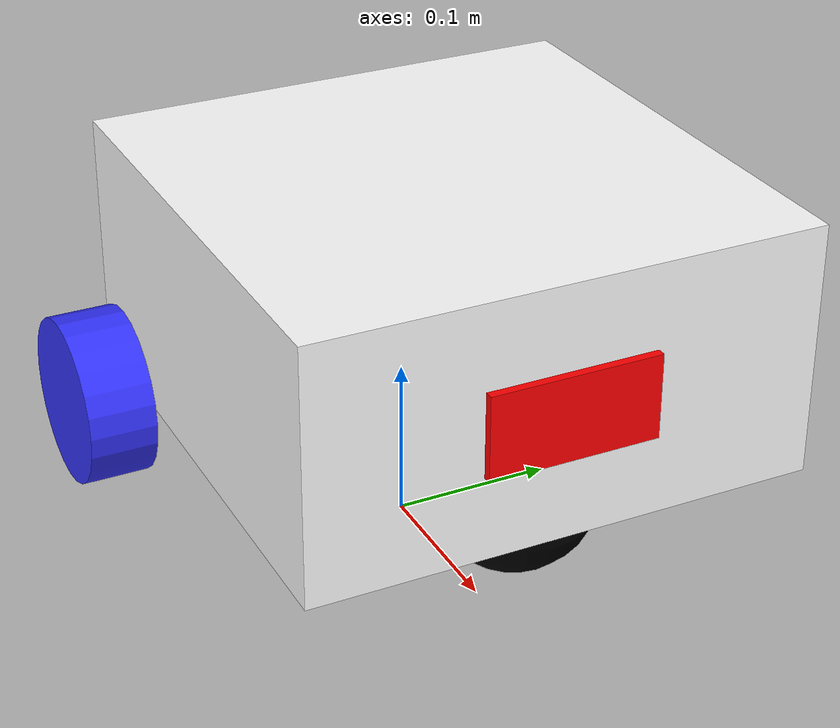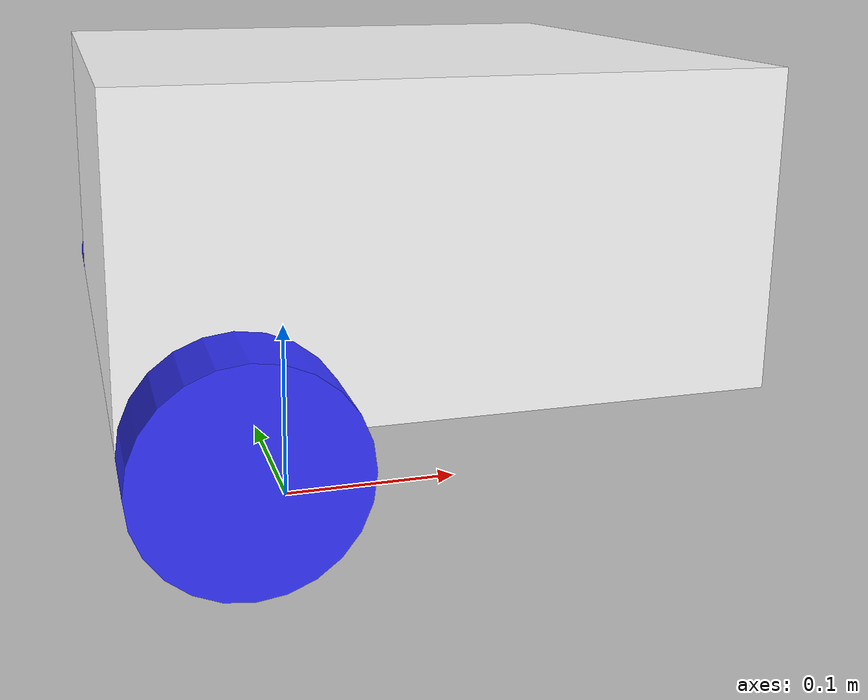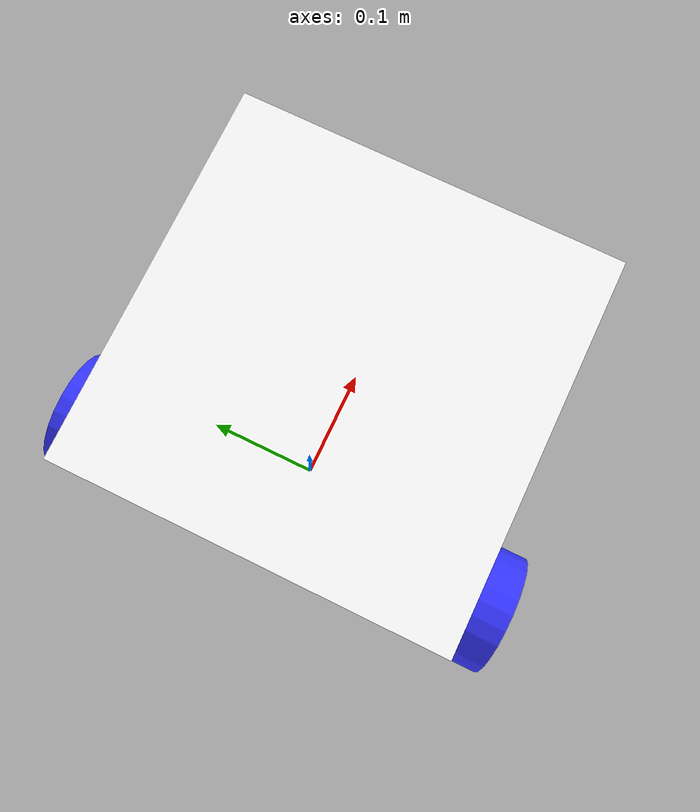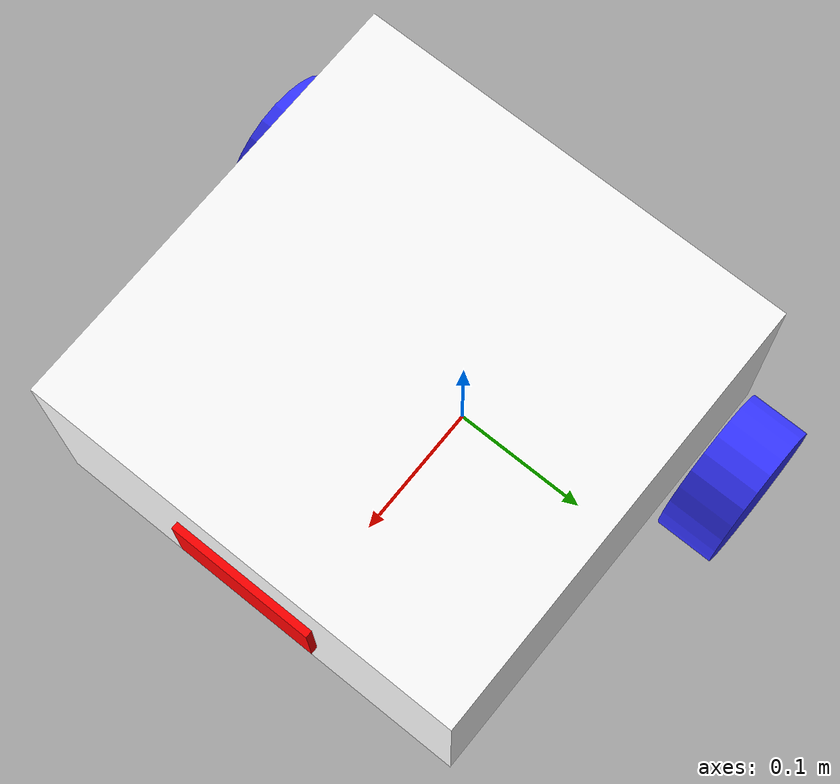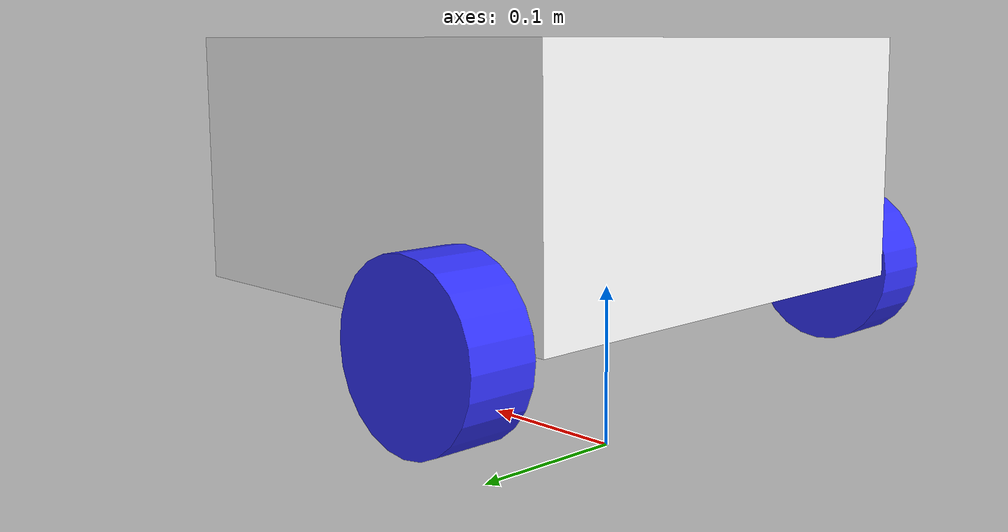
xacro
<?xml version="1.0"?>
<robot xmlns:xacro="http://www.ros.org/wiki/xacro"  name="robot">

    <xacro:include filename="robot_core.xacro" />
    <xacro:include filename="inertial_macros.xacro"/>
    <xacro:include filename="gazebo_control.xacro" />
    <xacro:include filename="camera.xacro"/>

</robot>

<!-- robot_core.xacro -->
<robot xmlns:xacro="http://www.ros.org/wiki/xacro">

<xacro:include filename="inertial_macros.xacro" />

<material name="white">
    <color rgba="1 1 1 1"/>
</material>

<material name="orange">
    <color rgba="1 0.3 0.1 1"/>
</material>

<material name="blue">
    <color rgba="0.2 0.2 1 1"/>
</material>

<material name="black">
    <color rgba="0 0 0 1"/>
</material>

<material name="red">
    <color rgba="1 0 0 1"/>
</material>

<link name="base_link">
</link>

<!--Chassis Link and Joint-->
<joint name="chassis_joint" type="fixed">
    <parent link = "base_link"/>
    <child link = "chassis"/>
    <origin xyz="-0.1 0 0.1"/>
</joint>

<link name="chassis">
    <visual>
        <origin xyz="0.15 0 0.075" rpy="0 0 0"/>
        <geometry>
            <box size="0.3 0.3 0.15"/>
        </geometry>
        <material name="white"/>
    </visual>
    <collision>
        <origin xyz="0.15 0 0.075" rpy="0 0 0"/>
        <geometry>
            <box size="0.3 0.3 0.15"/>
        </geometry>
    </collision>
    <xacro:inertial_box mass = "0.5" x="0.3" y="0.3" z="0.15">
        <origin xyz="0.15 0 0.075" rpy="0 0 0"/>
    </xacro:inertial_box>
</link>

<!--gazebo tags are used to make the robot appear correctly in gazebo-->
<gazebo reference="chassis">
    <material>Gazebo/White</material>
</gazebo>

<!--LEFT WHEEL-->
<joint name="left_wheel_joint" type="continuous">
    <parent link = "chassis"/>
    <child link = "left_wheel"/>
    <origin xyz="0.05 0.175 0" rpy="-${pi/2} 0 0"/>
    <axis xyz="0 0 1"/>
</joint>

<link name="left_wheel">
    <visual>
        <geometry>
            <cylinder length="0.04" radius="0.05" />
        </geometry>
        <material name="blue"/>
    </visual>
    <collision>
        <geometry>
            <cylinder length="0.04" radius="0.05"/>
        </geometry>
    </collision>
    <xacro:inertial_cylinder mass = "0.1" length="0.04" radius="0.05">
        <origin xyz="0 0 0" rpy="0 0 0"/>
    </xacro:inertial_cylinder>
</link>

<!--gazebo tags are used to make the robot appear correctly in gazebo-->
<gazebo reference="left_wheel">
    <material>Gazebo/Blue</material>
</gazebo>

<!--RIGHT WHEEL-->
<joint name="right_wheel_joint" type="continuous">
    <parent link = "chassis"/>
    <child link = "right_wheel"/>
    <origin xyz="0.05 -0.175 0" rpy="${pi/2} 0 0"/>
    <axis xyz="0 0 -1"/>
</joint>

<link name="right_wheel">
    <visual>
        <geometry>
            <cylinder length ="0.04" radius="0.05" />
        </geometry>
        <material name="blue"/>
    </visual>
    <collision>
        <geometry>
            <cylinder length="0.04" radius="0.05"/>
        </geometry>
    </collision>
    <xacro:inertial_cylinder mass = "0.1" length="0.04" radius="0.05">
        <origin xyz="0 0 0" rpy="0 0 0"/>
    </xacro:inertial_cylinder>
</link>

<!--gazebo tags are used to make the robot appear correctly in gazebo-->
<gazebo reference="right_wheel">
    <material>Gazebo/Blue</material>
</gazebo>

<!--CASTER WHEEL, this makes the robot turn-->
<joint name="caster_wheel_joint" type="fixed">
    <parent link = "chassis"/>
    <child link = "caster_wheel"/>
    <origin xyz="0.24 0 0" rpy="0 0 0"/>
</joint>

<link name="caster_wheel">
    <visual>
        <geometry>
            <sphere radius ="0.05"/>
        </geometry>
        <material name="black"/>
    </visual>
    <collision>
        <geometry>
            <sphere radius ="0.05"/>
        </geometry>
    </collision>
    <xacro:inertial_sphere mass = "0.1" radius="0.05">
        <origin xyz="0 0 0" rpy="0 0 0"/>
    </xacro:inertial_sphere>
</link>

<!--gazebo tags are used to make the robot appear correctly in gazebo-->
<gazebo reference="caster_wheel">
    <material>Gazebo/Black</material>
    <mu1 value="0.001"/>
    <mu2 value="0.001"/>
</gazebo>

</robot>

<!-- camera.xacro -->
<robot xmlns:xacro="http://www.ros.org/wiki/xacro"  name="robot">

    <gazebo>
        <plugin filename="gz-sim-sensors-system" name="gz::sim::systems::Sensors">
        <render_engine>ogre2</render_engine>
        </plugin>
    </gazebo>

    <joint name="camera_joint" type="fixed">
        <parent link="chassis"/>
        <child link="camera_frame"/>
        <origin xyz="0.3 0 0.075" rpy="0 0 0"/>
    </joint>

    <link name ="camera_frame">
        <visual>
        <geometry>
            <box size="0.01 0.1 0.05"/>
        </geometry>
        <material name="red"/>
        </visual>
    </link>

    <gazebo reference ="camera_frame">
        <sensor name="camera" type="camera">
          <camera>
            <horizontal_fov>1.047</horizontal_fov>
            <image>
              <width>640</width>
              <height>320</height>
            </image>
            <clip>
              <near>0.1</near>
              <far>100</far>
            </clip>
          </camera>
          <always_on>1</always_on>
          <update_rate>30</update_rate>
          <visualize>true</visualize>
          <topic>camera</topic>
        </sensor>

    </gazebo>
    </robot>
